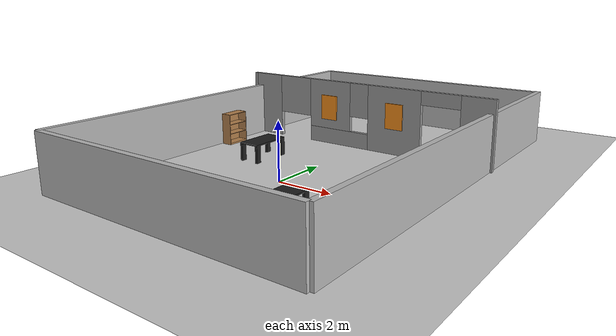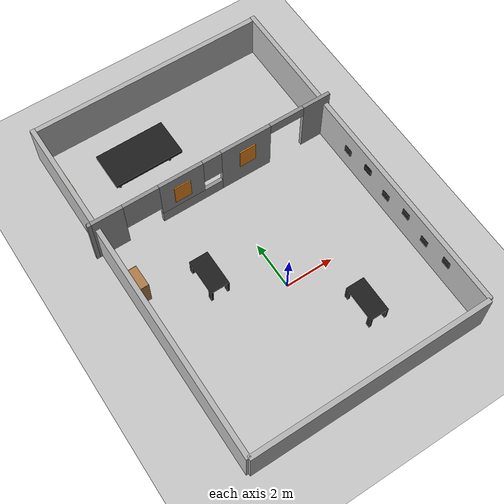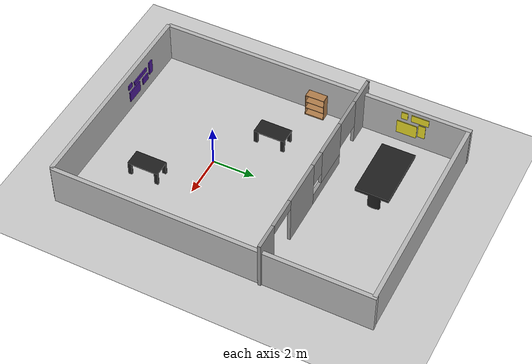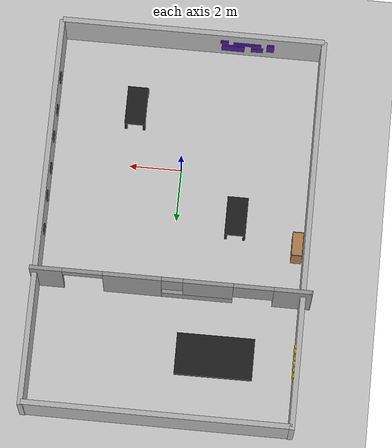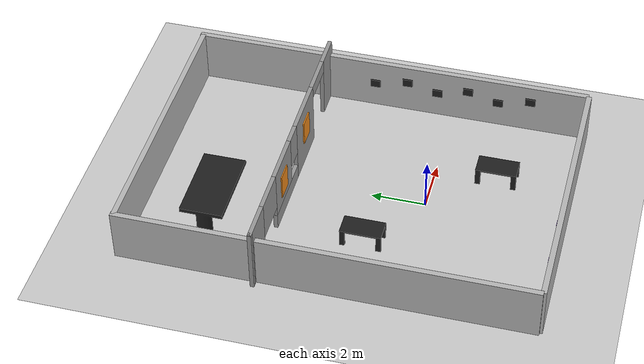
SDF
<sdf version="1.6">
 <world name="default">
  <physics name="default_physics" default="0" type="ode">
   <ode>
    <solver>
     <type>quick</type>
     <iters>20</iters>
     <sor>1</sor>
     <use_dynamic_moi_rescaling>0</use_dynamic_moi_rescaling>
    </solver>
    <constraints>
     <cfm>0</cfm>
     <erp>0.2</erp>
     <contact_max_correcting_vel>100</contact_max_correcting_vel>
     <contact_surface_layer>0</contact_surface_layer>
    </constraints>
   </ode>
   <real_time_update_rate>1000</real_time_update_rate>
   <max_step_size>0.001</max_step_size>
   <real_time_factor>1</real_time_factor>
  </physics>
  <light name="sun" type="directional">
   <pose>0 0 10 0 -0 0</pose>
   <diffuse>0.8 0.8 0.8 1</diffuse>
   <specular>0.1 0.1 0.1 1</specular>
   <attenuation>
    <range>1000</range>
    <constant>0.9</constant>
    <linear>0.01</linear>
    <quadratic>0.001</quadratic>
   </attenuation>
   <direction>-0.5 0.5 -1</direction>
  </light>
  <model name="ground_plane">
   <static>1</static>
   <link name="link">
    <collision name="collision">
     <geometry><plane><normal>0 0 1</normal><size>100 100</size></plane></geometry>
     <surface><friction><ode><mu>100</mu><mu2>50</mu2></ode></friction></surface>
    </collision>
    <visual name="visual">
     <cast_shadows>0</cast_shadows>
     <geometry><plane><normal>0 0 1</normal><size>100 100</size></plane></geometry>
     <material>
      <script><uri>file://media/materials/scripts/gazebo.material</uri><name>Gazebo/Grey</name></script>
     </material>
    </visual>
   </link>
  </model>
  <model name="wall_1_model">
   <pose>0 -5 1 0 -0 0</pose>
   <static>1</static>
   <link name="wall_1_body">
    <inertial>
     <mass>1</mass>
     <inertia><ixx>1</ixx><ixy>0</ixy><ixz>0</ixz><iyy>1</iyy><iyz>0</iyz><izz>1</izz></inertia>
    </inertial>
    <collision name="collision"><geometry><box><size>10 0.2 2</size></box></geometry></collision>
    <visual name="visual"><geometry><box><size>10 0.2 2</size></box></geometry></visual>
   </link>
  </model>
  <model name="wall_2_model">
   <pose>0 9.887 1 0 -0 0</pose>
   <static>1</static>
   <link name="wall_2_body">
    <inertial>
     <mass>1</mass>
     <inertia><ixx>1</ixx><ixy>0</ixy><ixz>0</ixz><iyy>1</iyy><iyz>0</iyz><izz>1</izz></inertia>
    </inertial>
    <collision name="collision"><geometry><box><size>10 0.2 2</size></box></geometry></collision>
    <visual name="visual"><geometry><box><size>10 0.2 2</size></box></geometry></visual>
   </link>
  </model>
  <model name="wall_3_model">
   <pose>-5 2.5 1 0 -0 0</pose>
   <static>1</static>
   <link name="wall_3_body">
    <inertial>
     <mass>1</mass>
     <inertia><ixx>1</ixx><ixy>0</ixy><ixz>0</ixz><iyy>1</iyy><iyz>0</iyz><izz>1</izz></inertia>
    </inertial>
    <collision name="collision"><geometry><box><size>0.2 15 2</size></box></geometry></collision>
    <visual name="visual"><geometry><box><size>0.2 15 2</size></box></geometry></visual>
   </link>
  </model>
  <model name="wall_4_model">
   <pose>5.0176 2.50998 1 0 -0 0</pose>
   <static>1</static>
   <link name="wall_4_body">
    <inertial>
     <mass>1</mass>
     <inertia><ixx>1</ixx><ixy>0</ixy><ixz>0</ixz><iyy>1</iyy><iyz>0</iyz><izz>1</izz></inertia>
    </inertial>
    <collision name="collision"><geometry><box><size>0.2 15 2</size></box></geometry></collision>
    <visual name="visual"><geometry><box><size>0.2 15 2</size></box></geometry></visual>
   </link>
  </model>
  <model name="kitchen_table">
   <static>1</static>
   <link name="link">
    <collision name="colision1">
     <geometry>
      <mesh><uri>model://kitchen_table/meshes/kitchen_table1.stl</uri><scale>1 1 1</scale></mesh>
     </geometry>
    </collision>
    <visual name="visual1">
     <geometry>
      <mesh><uri>model://kitchen_table/meshes/kitchen_table1.stl</uri><scale>1 1 1</scale></mesh>
     </geometry>
     <material>
      <script><uri>file://media/materials/scripts/gazebo.material</uri><name>Gazebo/FlatBlack</name></script>
     </material>
    </visual>
    <velocity_decay><linear>0</linear><angular>0</angular></velocity_decay>
   </link>
   <pose>1.51688 -2.99285 0 0 -0 0</pose>
  </model>
  <light name="male03light" type="point">
   <pose>3.6 0.53 1.6 0 -0 0</pose>
   <diffuse>0.5 0.5 0.5 1</diffuse>
   <specular>0.1 0.1 0.1 1</specular>
   <attenuation>
    <range>1</range>
    <linear>0.01</linear>
    <constant>0.3</constant>
    <quadratic>0</quadratic>
   </attenuation>
   <direction>0 0 -1</direction>
   <spot><inner_angle>0.6</inner_angle><outer_angle>0.8</outer_angle><falloff>1.2</falloff></spot>
   <cast_shadows>0</cast_shadows>
  </light>
  <light name="male03bislight" type="point">
   <pose>-2.9 3.7 1.5 0 -0 0</pose>
   <diffuse>0.5 0.5 0.5 1</diffuse>
   <specular>0.1 0.1 0.1 1</specular>
   <attenuation>
    <range>1</range>
    <linear>0.01</linear>
    <constant>0.3</constant>
    <quadratic>0</quadratic>
   </attenuation>
   <direction>0 0 -1</direction>
   <spot><inner_angle>0.6</inner_angle><outer_angle>0.8</outer_angle><falloff>1.2</falloff></spot>
   <cast_shadows>0</cast_shadows>
  </light>
  <gravity>0 0 -9.81</gravity>
  <magnetic_field>6e-06 2.3e-05 -4.2e-05</magnetic_field>
  <atmosphere type="adiabatic"/>
  <scene><ambient>0.4 0.4 0.4 1</ambient><background>0.7 0.7 0.7 1</background><shadows>1</shadows></scene>
  <spherical_coordinates>
   <surface_model>EARTH_WGS84</surface_model>
   <latitude_deg>0</latitude_deg>
   <longitude_deg>0</longitude_deg>
   <elevation>0</elevation>
   <heading_deg>0</heading_deg>
  </spherical_coordinates>
  <model name="kitchen_table_clone">
   <static>1</static>
   <link name="link">
    <collision name="colision1">
     <geometry>
      <mesh><uri>model://kitchen_table/meshes/kitchen_table1.stl</uri><scale>1 1 1</scale></mesh>
     </geometry>
    </collision>
    <visual name="visual1">
     <geometry>
      <mesh><uri>model://kitchen_table/meshes/kitchen_table1.stl</uri><scale>1 1 1</scale></mesh>
     </geometry>
     <material>
      <script><uri>file://media/materials/scripts/gazebo.material</uri><name>Gazebo/FlatBlack</name></script>
     </material>
    </visual>
    <velocity_decay><linear>0</linear><angular>0</angular></velocity_decay>
   </link>
   <pose>-2.68112 1.02129 0 0 -0 0</pose>
  </model>
  <model name="bookshelf">
   <static>1</static>
   <link name="link">
    <inertial><mass>1</mass></inertial>
    <collision name="back">
     <pose>0 0.005 0.6 0 -0 0</pose>
     <geometry><box><size>0.9 0.01 1.2</size></box></geometry>
    </collision>
    <visual name="visual1">
     <pose>0 0.005 0.6 0 -0 0</pose>
     <geometry><box><size>0.9 0.01 1.2</size></box></geometry>
     <material>
      <script><uri>file://media/materials/scripts/gazebo.material</uri><name>Gazebo/Wood</name></script>
     </material>
    </visual>
    <collision name="left_side">
     <pose>0.45 -0.195 0.6 0 -0 0</pose>
     <geometry><box><size>0.02 0.4 1.2</size></box></geometry>
    </collision>
    <visual name="visual2">
     <pose>0.45 -0.195 0.6 0 -0 0</pose>
     <geometry><box><size>0.02 0.4 1.2</size></box></geometry>
     <material>
      <script><uri>file://media/materials/scripts/gazebo.material</uri><name>Gazebo/Wood</name></script>
     </material>
    </visual>
    <collision name="right_side">
     <pose>-0.45 -0.195 0.6 0 -0 0</pose>
     <geometry><box><size>0.02 0.4 1.2</size></box></geometry>
    </collision>
    <visual name="visual3">
     <pose>-0.45 -0.195 0.6 0 -0 0</pose>
     <geometry><box><size>0.02 0.4 1.2</size></box></geometry>
     <material>
      <script><uri>file://media/materials/scripts/gazebo.material</uri><name>Gazebo/Wood</name></script>
     </material>
    </visual>
    <collision name="bottom">
     <pose>0 -0.195 0.03 0 -0 0</pose>
     <geometry><box><size>0.88 0.4 0.06</size></box></geometry>
    </collision>
    <visual name="visual4">
     <pose>0 -0.195 0.03 0 -0 0</pose>
     <geometry><box><size>0.88 0.4 0.06</size></box></geometry>
     <material>
      <script><uri>file://media/materials/scripts/gazebo.material</uri><name>Gazebo/Wood</name></script>
     </material>
    </visual>
    <collision name="top">
     <pose>0 -0.195 1.19 0 -0 0</pose>
     <geometry><box><size>0.88 0.4 0.02</size></box></geometry>
    </collision>
    <visual name="visual5">
     <pose>0 -0.195 1.19 0 -0 0</pose>
     <geometry><box><size>0.88 0.4 0.02</size></box></geometry>
     <material>
      <script><uri>file://media/materials/scripts/gazebo.material</uri><name>Gazebo/Wood</name></script>
     </material>
    </visual>
    <collision name="low_shelf">
     <pose>0 -0.195 0.43 0 -0 0</pose>
     <geometry><box><size>0.88 0.4 0.02</size></box></geometry>
    </collision>
    <visual name="visual6">
     <pose>0 -0.195 0.43 0 -0 0</pose>
     <geometry><box><size>0.88 0.4 0.02</size></box></geometry>
     <material>
      <script><uri>file://media/materials/scripts/gazebo.material</uri><name>Gazebo/Wood</name></script>
     </material>
    </visual>
    <collision name="high_shelf">
     <pose>0 -0.195 0.8 0 -0 0</pose>
     <geometry><box><size>0.88 0.4 0.02</size></box></geometry>
    </collision>
    <visual name="visual7">
     <pose>0 -0.195 0.8 0 -0 0</pose>
     <geometry><box><size>0.88 0.4 0.02</size></box></geometry>
     <material>
      <script><uri>file://media/materials/scripts/gazebo.material</uri><name>Gazebo/Wood</name></script>
     </material>
    </visual>
   </link>
   <pose>-4.8469 2.77434 0 0 -0 1.57996</pose>
  </model>
  <model name="varying_doors2_0">
   <pose>-0.07591 4.91817 0 0 -0 0</pose>
   <link name="Wall_7">
    <pose>0.01315 0 0 0 -0 3.14159</pose>
    <visual name="Wall_7_Visual_0">
     <pose>-4.64084 0 1.25 0 -0 0</pose>
     <geometry><box><size>1.21832 0.15 2.5</size></box></geometry>
     <material>
      <script><uri>file://media/materials/scripts/gazebo.material</uri><name>Gazebo/Grey</name></script>
      <ambient>1 1 1 1</ambient>
     </material>
    </visual>
    <collision name="Wall_7_Collision_0">
     <geometry><box><size>1.21832 0.15 2.5</size></box></geometry>
     <pose>-4.64084 0 1.25 0 -0 0</pose>
    </collision>
    <visual name="Wall_7_Visual_1">
     <pose>-1.43659 0 1.25 0 -0 0</pose>
     <geometry><box><size>2.19018 0.15 2.5</size></box></geometry>
     <material>
      <script><uri>file://media/materials/scripts/gazebo.material</uri><name>Gazebo/Grey</name></script>
      <ambient>1 1 1 1</ambient>
     </material>
    </visual>
    <collision name="Wall_7_Collision_1">
     <geometry><box><size>2.19018 0.15 2.5</size></box></geometry>
     <pose>-1.43659 0 1.25 0 -0 0</pose>
    </collision>
    <visual name="Wall_7_Visual_2">
     <pose>4.54154 0 1.25 0 -0 0</pose>
     <geometry><box><size>1.41692 0.15 2.5</size></box></geometry>
     <material>
      <script><uri>file://media/materials/scripts/gazebo.material</uri><name>Gazebo/Grey</name></script>
      <ambient>1 1 1 1</ambient>
     </material>
    </visual>
    <collision name="Wall_7_Collision_2">
     <geometry><box><size>1.41692 0.15 2.5</size></box></geometry>
     <pose>4.54154 0 1.25 0 -0 0</pose>
    </collision>
    <visual name="Wall_7_Visual_3">
     <pose>0.995794 0 0.3 0 -0 0</pose>
     <geometry><box><size>2.67457 0.15 0.6</size></box></geometry>
     <material>
      <script><uri>file://media/materials/scripts/gazebo.material</uri><name>Gazebo/Grey</name></script>
      <ambient>1 1 1 1</ambient>
     </material>
    </visual>
    <collision name="Wall_7_Collision_3">
     <geometry><box><size>2.67457 0.15 0.6</size></box></geometry>
     <pose>0.995794 0 0.3 0 -0 0</pose>
    </collision>
    <visual name="Wall_7_Visual_4">
     <pose>1.39579 0 1.55 0 -0 0</pose>
     <geometry><box><size>1.87458 0.15 1.9</size></box></geometry>
     <material>
      <script><uri>file://media/materials/scripts/gazebo.material</uri><name>Gazebo/Grey</name></script>
      <ambient>1 1 1 1</ambient>
     </material>
    </visual>
    <collision name="Wall_7_Collision_4">
     <geometry><box><size>1.87458 0.15 1.9</size></box></geometry>
     <pose>1.39579 0 1.55 0 -0 0</pose>
    </collision>
    <visual name="Wall_7_Visual_5">
     <pose>3.08308 0 1.75 0 -0 0</pose>
     <geometry><box><size>1.5 0.15 1.5</size></box></geometry>
     <material>
      <script><uri>file://media/materials/scripts/gazebo.material</uri><name>Gazebo/Grey</name></script>
      <ambient>1 1 1 1</ambient>
     </material>
    </visual>
    <collision name="Wall_7_Collision_5">
     <geometry><box><size>1.5 0.15 1.5</size></box></geometry>
     <pose>3.08308 0 1.75 0 -0 0</pose>
    </collision>
    <visual name="Wall_7_Visual_6">
     <pose>0.058506 0 1.85 0 -0 0</pose>
     <geometry><box><size>0.8 0.15 1.3</size></box></geometry>
     <material>
      <script><uri>file://media/materials/scripts/gazebo.material</uri><name>Gazebo/Grey</name></script>
      <ambient>1 1 1 1</ambient>
     </material>
    </visual>
    <collision name="Wall_7_Collision_6">
     <geometry><box><size>0.8 0.15 1.3</size></box></geometry>
     <pose>0.058506 0 1.85 0 -0 0</pose>
    </collision>
    <visual name="Wall_7_Visual_7">
     <pose>-3.28168 0 2.25 0 -0 0</pose>
     <geometry><box><size>1.5 0.15 0.5</size></box></geometry>
     <material>
      <script><uri>file://media/materials/scripts/gazebo.material</uri><name>Gazebo/Grey</name></script>
      <ambient>1 1 1 1</ambient>
     </material>
    </visual>
    <collision name="Wall_7_Collision_7">
     <geometry><box><size>1.5 0.15 0.5</size></box></geometry>
     <pose>-3.28168 0 2.25 0 -0 0</pose>
    </collision>
   </link>
   <link name="Wall_8">
    <collision name="Wall_8_Collision">
     <geometry><box><size>0.15 0.15 2.5</size></box></geometry>
     <pose>0 0 1.25 0 -0 0</pose>
    </collision>
    <visual name="Wall_8_Visual">
     <pose>0 0 1.25 0 -0 0</pose>
     <geometry><box><size>0.15 0.15 2.5</size></box></geometry>
     <material>
      <script><uri>file://media/materials/scripts/gazebo.material</uri><name>Gazebo/Grey</name></script>
      <ambient>1 1 1 1</ambient>
     </material>
    </visual>
    <pose>-5.18815 0 0 0 -0 0</pose>
   </link>
   <static>1</static>
  </model>
  <model name="posters_many">
   <static>1</static>
   <link name="link">
    <collision name="colision1">
     <geometry><mesh><uri>model://posters_many/meshes/poster.stl</uri><scale>1 1 1</scale></mesh></geometry>
    </collision>
    <visual name="visual1">
     <geometry><mesh><uri>model://posters_many/meshes/poster.stl</uri><scale>1 1 1</scale></mesh></geometry>
     <material>
      <script><uri>file://media/materials/scripts/gazebo.material</uri><name>Gazebo/Indigo</name></script>
     </material>
    </visual>
    <velocity_decay><linear>0</linear><angular>0</angular></velocity_decay>
   </link>
   <pose>-3.24792 -4.85039 0 0 -0 0</pose>
  </model>
  <model name="poster_red">
   <static>1</static>
   <link name="link">
    <collision name="colision1">
     <geometry><mesh><uri>model://poster_red/meshes/poster.stl</uri><scale>1 1 1</scale></mesh></geometry>
    </collision>
    <visual name="visual1">
     <geometry><mesh><uri>model://poster_red/meshes/poster.stl</uri><scale>1 1 1</scale></mesh></geometry>
     <material>
      <script><uri>file://media/materials/scripts/gazebo.material</uri><name>Gazebo/Orange</name></script>
     </material>
    </visual>
    <velocity_decay><linear>0</linear><angular>0</angular></velocity_decay>
   </link>
   <pose>-1.83409 4.85422 0.94927 0 -0 0</pose>
  </model>
  <model name="poster_red_clone">
   <static>1</static>
   <link name="link">
    <collision name="colision1">
     <geometry><mesh><uri>model://poster_red/meshes/poster.stl</uri><scale>1 1 1</scale></mesh></geometry>
    </collision>
    <visual name="visual1">
     <geometry><mesh><uri>model://poster_red/meshes/poster.stl</uri><scale>1 1 1</scale></mesh></geometry>
     <material>
      <script><uri>file://media/materials/scripts/gazebo.material</uri><name>Gazebo/Orange</name></script>
     </material>
    </visual>
    <velocity_decay><linear>0</linear><angular>0</angular></velocity_decay>
   </link>
   <pose>1.04882 4.84808 0.94927 0 -0 0</pose>
  </model>
  <model name="posters_yellow">
   <static>1</static>
   <link name="link">
    <collision name="colision1">
     <geometry><mesh><uri>model://posters_yellow/meshes/poster.stl</uri><scale>1 1 1</scale></mesh></geometry>
    </collision>
    <visual name="visual1">
     <geometry><mesh><uri>model://posters_yellow/meshes/poster.stl</uri><scale>1 1 1</scale></mesh></geometry>
     <material>
      <script><uri>file://media/materials/scripts/gazebo.material</uri><name>Gazebo/DarkYellow</name></script>
     </material>
    </visual>
    <velocity_decay><linear>0</linear><angular>0</angular></velocity_decay>
   </link>
   <pose>-4.9142 6.59883 1.99633 -3.14159 1.56926 -1.56558</pose>
  </model>
  <model name="poster_black">
   <static>1</static>
   <link name="link">
    <collision name="colision1">
     <geometry><mesh><uri>model://poster_black/meshes/poster.stl</uri><scale>1 1 1</scale></mesh></geometry>
    </collision>
    <visual name="visual1">
     <geometry><mesh><uri>model://poster_black/meshes/poster.stl</uri><scale>1 1 1</scale></mesh></geometry>
     <material>
      <script><uri>file://media/materials/scripts/gazebo.material</uri><name>Gazebo/Black</name></script>
     </material>
    </visual>
    <velocity_decay><linear>0</linear><angular>0</angular></velocity_decay>
   </link>
   <pose>4.88143 1.46171 0.83699 0 -0 1.60661</pose>
  </model>
  <model name="poster_black_clone">
   <static>1</static>
   <link name="link">
    <collision name="colision1">
     <geometry><mesh><uri>model://poster_black/meshes/poster.stl</uri><scale>1 1 1</scale></mesh></geometry>
    </collision>
    <visual name="visual1">
     <geometry><mesh><uri>model://poster_black/meshes/poster.stl</uri><scale>1 1 1</scale></mesh></geometry>
     <material>
      <script><uri>file://media/materials/scripts/gazebo.material</uri><name>Gazebo/Black</name></script>
     </material>
    </visual>
    <velocity_decay><linear>0</linear><angular>0</angular></velocity_decay>
   </link>
   <pose>4.86959 0.304128 0.562182 0 -0 1.5645</pose>
  </model>
  <model name="poster_black_clone_0">
   <static>1</static>
   <link name="link">
    <collision name="colision1">
     <geometry><mesh><uri>model://poster_black/meshes/poster.stl</uri><scale>1 1 1</scale></mesh></geometry>
    </collision>
    <visual name="visual1">
     <geometry><mesh><uri>model://poster_black/meshes/poster.stl</uri><scale>1 1 1</scale></mesh></geometry>
     <material>
      <script><uri>file://media/materials/scripts/gazebo.material</uri><name>Gazebo/Black</name></script>
     </material>
    </visual>
    <velocity_decay><linear>0</linear><angular>0</angular></velocity_decay>
   </link>
   <pose>4.87334 -0.860826 0.863589 0 -0 1.5645</pose>
  </model>
  <model name="poster_black_clone_clone">
   <static>1</static>
   <link name="link">
    <collision name="colision1">
     <geometry><mesh><uri>model://poster_black/meshes/poster.stl</uri><scale>1 1 1</scale></mesh></geometry>
    </collision>
    <visual name="visual1">
     <geometry><mesh><uri>model://poster_black/meshes/poster.stl</uri><scale>1 1 1</scale></mesh></geometry>
     <material>
      <script><uri>file://media/materials/scripts/gazebo.material</uri><name>Gazebo/Black</name></script>
     </material>
    </visual>
    <velocity_decay><linear>0</linear><angular>0</angular></velocity_decay>
   </link>
   <pose>4.86902 2.70027 0.562182 0 -0 1.5645</pose>
  </model>
  <model name="poster_black_clone_clone_clone">
   <static>1</static>
   <link name="link">
    <collision name="colision1">
     <geometry><mesh><uri>model://poster_black/meshes/poster.stl</uri><scale>1 1 1</scale></mesh></geometry>
    </collision>
    <visual name="visual1">
     <geometry><mesh><uri>model://poster_black/meshes/poster.stl</uri><scale>1 1 1</scale></mesh></geometry>
     <material>
      <script><uri>file://media/materials/scripts/gazebo.material</uri><name>Gazebo/Black</name></script>
     </material>
    </visual>
    <velocity_decay><linear>0</linear><angular>0</angular></velocity_decay>
   </link>
   <pose>4.87633 -2.01394 0.562182 0 -0 1.5645</pose>
  </model>
  <model name="poster_black_clone_0_clone">
   <static>1</static>
   <link name="link">
    <collision name="colision1">
     <geometry><mesh><uri>model://poster_black/meshes/poster.stl</uri><scale>1 1 1</scale></mesh></geometry>
    </collision>
    <visual name="visual1">
     <geometry><mesh><uri>model://poster_black/meshes/poster.stl</uri><scale>1 1 1</scale></mesh></geometry>
     <material>
      <script><uri>file://media/materials/scripts/gazebo.material</uri><name>Gazebo/Black</name></script>
     </material>
    </visual>
    <velocity_decay><linear>0</linear><angular>0</angular></velocity_decay>
   </link>
   <pose>4.85783 -3.2287 0.863589 0 -0 1.5645</pose>
  </model>
  <model name="bar2">
   <static>1</static>
   <link name="link">
    <collision name="colision1">
     <geometry><mesh><uri>model://bar2/meshes/bar.stl</uri><scale>1 1 1</scale></mesh></geometry>
    </collision>
    <visual name="visual1">
     <geometry><mesh><uri>model://bar2/meshes/bar.stl</uri><scale>1 1 1</scale></mesh></geometry>
     <material>
      <script><uri>file://media/materials/scripts/gazebo.material</uri><name>Gazebo/FlatBlack</name></script>
     </material>
    </visual>
    <velocity_decay><linear>0</linear><angular>0</angular></velocity_decay>
   </link>
   <pose>-3.38521 8.1269 0 0 0 -1.56618</pose>
  </model>
 </world>
</sdf>
